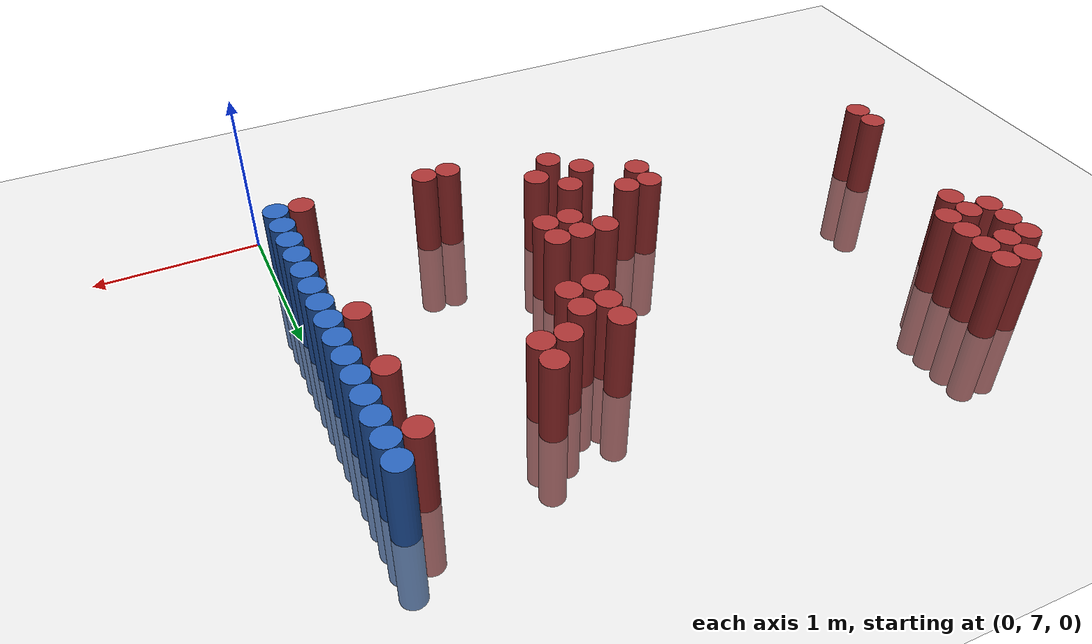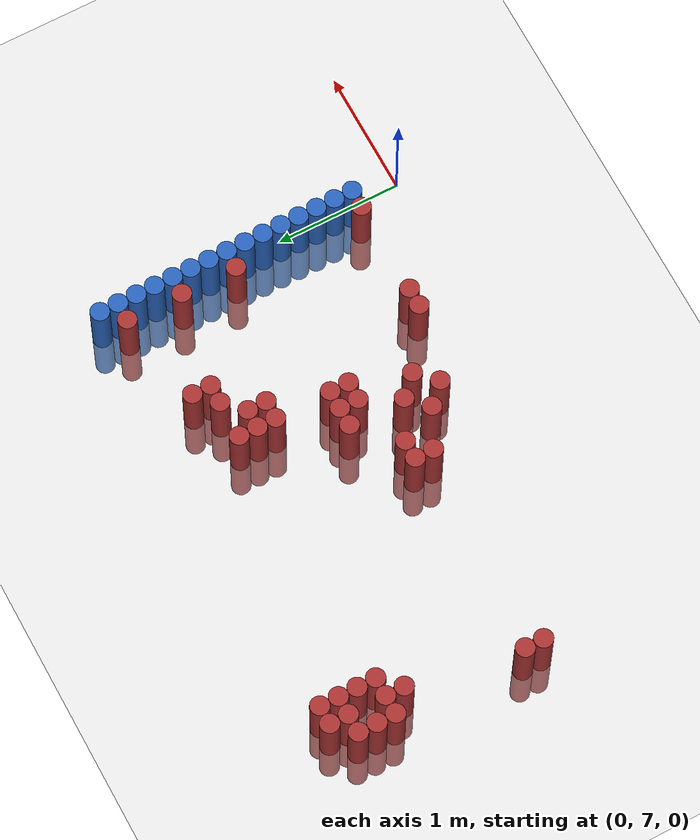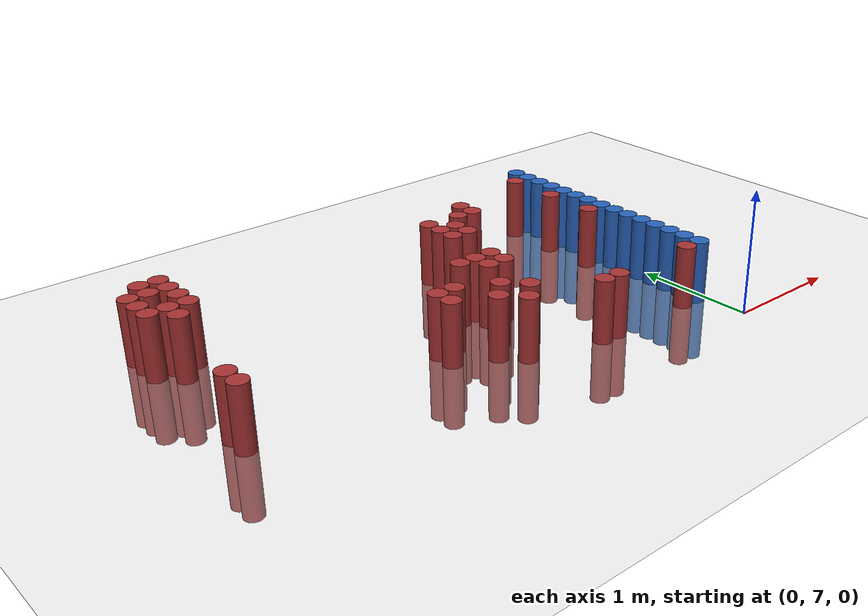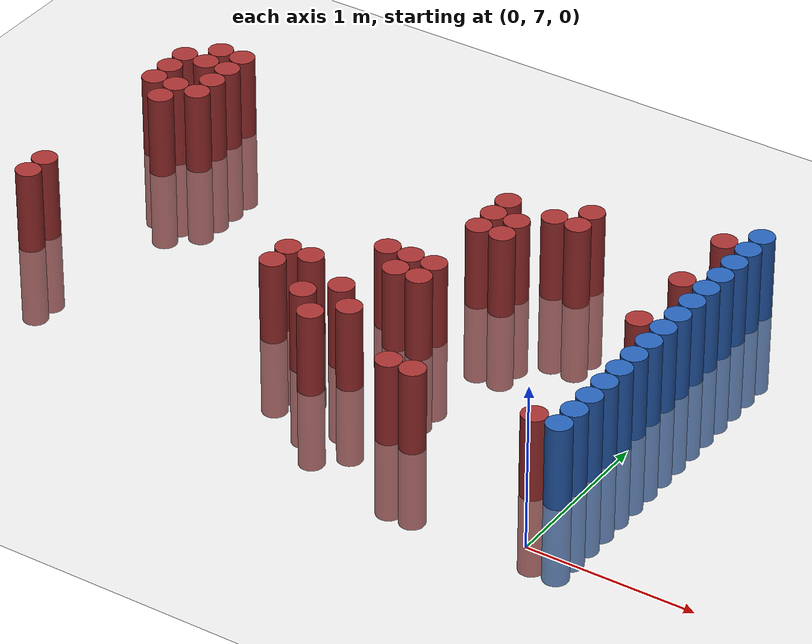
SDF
<sdf version="1.6">
 <world name="default">
  <model name="ground_plane">
   <static>1</static>
   <link name="link">
    <collision name="collision">
     <geometry><plane><normal>0 0 1</normal><size>100 100</size></plane></geometry>
     <surface><friction><ode><mu>100</mu><mu2>50</mu2></ode></friction></surface>
    </collision>
    <visual name="visual">
     <cast_shadows>0</cast_shadows>
     <geometry><plane><normal>0 0 1</normal><size>100 100</size></plane></geometry>
     <material>
      <script><uri>file://media/materials/scripts/gazebo.material</uri><name>Gazebo/Grey</name></script>
     </material>
    </visual>
   </link>
  </model>
  <model name="unit_cylinder_157">
   <static>1</static>
   <pose>-3.825000 7.875000 0.000000 0.000000 0.000000 0.000000</pose>
   <link name="link">
    <inertial>
     <mass>1</mass>
     <inertia><ixx>0.145833</ixx><ixy>0</ixy><ixz>0</ixz><iyy>0.145833</iyy><iyz>0</iyz><izz>0.125</izz></inertia>
    </inertial>
    <collision name="collision">
     <geometry><cylinder><radius>0.075000</radius><length>1</length></cylinder></geometry>
    </collision>
    <visual name="visual">
     <geometry><cylinder><radius>0.075000</radius><length>1</length></cylinder></geometry>
     <material>
      <ambient>0.648000 0.192000 0.192000 1</ambient>
      <diffuse>0.648000 0.192000 0.192000 1</diffuse>
     </material>
     <material>
      <script><name>Gazebo/Grey</name><uri>file://media/materials/scripts/gazebo.material</uri></script>
     </material>
    </visual>
   </link>
  </model>
  <model name="unit_cylinder_158">
   <static>1</static>
   <pose>-3.825000 8.025000 0.000000 0.000000 0.000000 0.000000</pose>
   <link name="link">
    <inertial>
     <mass>1</mass>
     <inertia><ixx>0.145833</ixx><ixy>0</ixy><ixz>0</ixz><iyy>0.145833</iyy><iyz>0</iyz><izz>0.125</izz></inertia>
    </inertial>
    <collision name="collision">
     <geometry><cylinder><radius>0.075000</radius><length>1</length></cylinder></geometry>
    </collision>
    <visual name="visual">
     <geometry><cylinder><radius>0.075000</radius><length>1</length></cylinder></geometry>
     <material>
      <ambient>0.648000 0.192000 0.192000 1</ambient>
      <diffuse>0.648000 0.192000 0.192000 1</diffuse>
     </material>
     <material>
      <script><name>Gazebo/Grey</name><uri>file://media/materials/scripts/gazebo.material</uri></script>
     </material>
    </visual>
   </link>
  </model>
  <model name="unit_cylinder_159">
   <static>1</static>
   <pose>-3.825000 9.075000 0.000000 0.000000 0.000000 0.000000</pose>
   <link name="link">
    <inertial>
     <mass>1</mass>
     <inertia><ixx>0.145833</ixx><ixy>0</ixy><ixz>0</ixz><iyy>0.145833</iyy><iyz>0</iyz><izz>0.125</izz></inertia>
    </inertial>
    <collision name="collision">
     <geometry><cylinder><radius>0.075000</radius><length>1</length></cylinder></geometry>
    </collision>
    <visual name="visual">
     <geometry><cylinder><radius>0.075000</radius><length>1</length></cylinder></geometry>
     <material>
      <ambient>0.648000 0.192000 0.192000 1</ambient>
      <diffuse>0.648000 0.192000 0.192000 1</diffuse>
     </material>
     <material>
      <script><name>Gazebo/Grey</name><uri>file://media/materials/scripts/gazebo.material</uri></script>
     </material>
    </visual>
   </link>
  </model>
  <model name="unit_cylinder_160">
   <static>1</static>
   <pose>-3.825000 9.225000 0.000000 0.000000 0.000000 0.000000</pose>
   <link name="link">
    <inertial>
     <mass>1</mass>
     <inertia><ixx>0.145833</ixx><ixy>0</ixy><ixz>0</ixz><iyy>0.145833</iyy><iyz>0</iyz><izz>0.125</izz></inertia>
    </inertial>
    <collision name="collision">
     <geometry><cylinder><radius>0.075000</radius><length>1</length></cylinder></geometry>
    </collision>
    <visual name="visual">
     <geometry><cylinder><radius>0.075000</radius><length>1</length></cylinder></geometry>
     <material>
      <ambient>0.648000 0.192000 0.192000 1</ambient>
      <diffuse>0.648000 0.192000 0.192000 1</diffuse>
     </material>
     <material>
      <script><name>Gazebo/Grey</name><uri>file://media/materials/scripts/gazebo.material</uri></script>
     </material>
    </visual>
   </link>
  </model>
  <model name="unit_cylinder_161">
   <static>1</static>
   <pose>-3.825000 9.375000 0.000000 0.000000 0.000000 0.000000</pose>
   <link name="link">
    <inertial>
     <mass>1</mass>
     <inertia><ixx>0.145833</ixx><ixy>0</ixy><ixz>0</ixz><iyy>0.145833</iyy><iyz>0</iyz><izz>0.125</izz></inertia>
    </inertial>
    <collision name="collision">
     <geometry><cylinder><radius>0.075000</radius><length>1</length></cylinder></geometry>
    </collision>
    <visual name="visual">
     <geometry><cylinder><radius>0.075000</radius><length>1</length></cylinder></geometry>
     <material>
      <ambient>0.648000 0.192000 0.192000 1</ambient>
      <diffuse>0.648000 0.192000 0.192000 1</diffuse>
     </material>
     <material>
      <script><name>Gazebo/Grey</name><uri>file://media/materials/scripts/gazebo.material</uri></script>
     </material>
    </visual>
   </link>
  </model>
  <model name="unit_cylinder_165">
   <static>1</static>
   <pose>-3.675000 8.925000 0.000000 0.000000 0.000000 0.000000</pose>
   <link name="link">
    <inertial>
     <mass>1</mass>
     <inertia><ixx>0.145833</ixx><ixy>0</ixy><ixz>0</ixz><iyy>0.145833</iyy><iyz>0</iyz><izz>0.125</izz></inertia>
    </inertial>
    <collision name="collision">
     <geometry><cylinder><radius>0.075000</radius><length>1</length></cylinder></geometry>
    </collision>
    <visual name="visual">
     <geometry><cylinder><radius>0.075000</radius><length>1</length></cylinder></geometry>
     <material>
      <ambient>0.648000 0.192000 0.192000 1</ambient>
      <diffuse>0.648000 0.192000 0.192000 1</diffuse>
     </material>
     <material>
      <script><name>Gazebo/Grey</name><uri>file://media/materials/scripts/gazebo.material</uri></script>
     </material>
    </visual>
   </link>
  </model>
  <model name="unit_cylinder_166">
   <static>1</static>
   <pose>-3.675000 9.075000 0.000000 0.000000 0.000000 0.000000</pose>
   <link name="link">
    <inertial>
     <mass>1</mass>
     <inertia><ixx>0.145833</ixx><ixy>0</ixy><ixz>0</ixz><iyy>0.145833</iyy><iyz>0</iyz><izz>0.125</izz></inertia>
    </inertial>
    <collision name="collision">
     <geometry><cylinder><radius>0.075000</radius><length>1</length></cylinder></geometry>
    </collision>
    <visual name="visual">
     <geometry><cylinder><radius>0.075000</radius><length>1</length></cylinder></geometry>
     <material>
      <ambient>0.648000 0.192000 0.192000 1</ambient>
      <diffuse>0.648000 0.192000 0.192000 1</diffuse>
     </material>
     <material>
      <script><name>Gazebo/Grey</name><uri>file://media/materials/scripts/gazebo.material</uri></script>
     </material>
    </visual>
   </link>
  </model>
  <model name="unit_cylinder_167">
   <static>1</static>
   <pose>-3.675000 9.375000 0.000000 0.000000 0.000000 0.000000</pose>
   <link name="link">
    <inertial>
     <mass>1</mass>
     <inertia><ixx>0.145833</ixx><ixy>0</ixy><ixz>0</ixz><iyy>0.145833</iyy><iyz>0</iyz><izz>0.125</izz></inertia>
    </inertial>
    <collision name="collision">
     <geometry><cylinder><radius>0.075000</radius><length>1</length></cylinder></geometry>
    </collision>
    <visual name="visual">
     <geometry><cylinder><radius>0.075000</radius><length>1</length></cylinder></geometry>
     <material>
      <ambient>0.648000 0.192000 0.192000 1</ambient>
      <diffuse>0.648000 0.192000 0.192000 1</diffuse>
     </material>
     <material>
      <script><name>Gazebo/Grey</name><uri>file://media/materials/scripts/gazebo.material</uri></script>
     </material>
    </visual>
   </link>
  </model>
  <model name="unit_cylinder_168">
   <static>1</static>
   <pose>-3.675000 9.525000 0.000000 0.000000 0.000000 0.000000</pose>
   <link name="link">
    <inertial>
     <mass>1</mass>
     <inertia><ixx>0.145833</ixx><ixy>0</ixy><ixz>0</ixz><iyy>0.145833</iyy><iyz>0</iyz><izz>0.125</izz></inertia>
    </inertial>
    <collision name="collision">
     <geometry><cylinder><radius>0.075000</radius><length>1</length></cylinder></geometry>
    </collision>
    <visual name="visual">
     <geometry><cylinder><radius>0.075000</radius><length>1</length></cylinder></geometry>
     <material>
      <ambient>0.648000 0.192000 0.192000 1</ambient>
      <diffuse>0.648000 0.192000 0.192000 1</diffuse>
     </material>
     <material>
      <script><name>Gazebo/Grey</name><uri>file://media/materials/scripts/gazebo.material</uri></script>
     </material>
    </visual>
   </link>
  </model>
  <model name="unit_cylinder_172">
   <static>1</static>
   <pose>-3.525000 9.075000 0.000000 0.000000 0.000000 0.000000</pose>
   <link name="link">
    <inertial>
     <mass>1</mass>
     <inertia><ixx>0.145833</ixx><ixy>0</ixy><ixz>0</ixz><iyy>0.145833</iyy><iyz>0</iyz><izz>0.125</izz></inertia>
    </inertial>
    <collision name="collision">
     <geometry><cylinder><radius>0.075000</radius><length>1</length></cylinder></geometry>
    </collision>
    <visual name="visual">
     <geometry><cylinder><radius>0.075000</radius><length>1</length></cylinder></geometry>
     <material>
      <ambient>0.648000 0.192000 0.192000 1</ambient>
      <diffuse>0.648000 0.192000 0.192000 1</diffuse>
     </material>
     <material>
      <script><name>Gazebo/Grey</name><uri>file://media/materials/scripts/gazebo.material</uri></script>
     </material>
    </visual>
   </link>
  </model>
  <model name="unit_cylinder_173">
   <static>1</static>
   <pose>-3.525000 9.225000 0.000000 0.000000 0.000000 0.000000</pose>
   <link name="link">
    <inertial>
     <mass>1</mass>
     <inertia><ixx>0.145833</ixx><ixy>0</ixy><ixz>0</ixz><iyy>0.145833</iyy><iyz>0</iyz><izz>0.125</izz></inertia>
    </inertial>
    <collision name="collision">
     <geometry><cylinder><radius>0.075000</radius><length>1</length></cylinder></geometry>
    </collision>
    <visual name="visual">
     <geometry><cylinder><radius>0.075000</radius><length>1</length></cylinder></geometry>
     <material>
      <ambient>0.648000 0.192000 0.192000 1</ambient>
      <diffuse>0.648000 0.192000 0.192000 1</diffuse>
     </material>
     <material>
      <script><name>Gazebo/Grey</name><uri>file://media/materials/scripts/gazebo.material</uri></script>
     </material>
    </visual>
   </link>
  </model>
  <model name="unit_cylinder_174">
   <static>1</static>
   <pose>-3.525000 9.375000 0.000000 0.000000 0.000000 0.000000</pose>
   <link name="link">
    <inertial>
     <mass>1</mass>
     <inertia><ixx>0.145833</ixx><ixy>0</ixy><ixz>0</ixz><iyy>0.145833</iyy><iyz>0</iyz><izz>0.125</izz></inertia>
    </inertial>
    <collision name="collision">
     <geometry><cylinder><radius>0.075000</radius><length>1</length></cylinder></geometry>
    </collision>
    <visual name="visual">
     <geometry><cylinder><radius>0.075000</radius><length>1</length></cylinder></geometry>
     <material>
      <ambient>0.648000 0.192000 0.192000 1</ambient>
      <diffuse>0.648000 0.192000 0.192000 1</diffuse>
     </material>
     <material>
      <script><name>Gazebo/Grey</name><uri>file://media/materials/scripts/gazebo.material</uri></script>
     </material>
    </visual>
   </link>
  </model>
  <model name="unit_cylinder_175">
   <static>1</static>
   <pose>-3.525000 9.525000 0.000000 0.000000 0.000000 0.000000</pose>
   <link name="link">
    <inertial>
     <mass>1</mass>
     <inertia><ixx>0.145833</ixx><ixy>0</ixy><ixz>0</ixz><iyy>0.145833</iyy><iyz>0</iyz><izz>0.125</izz></inertia>
    </inertial>
    <collision name="collision">
     <geometry><cylinder><radius>0.075000</radius><length>1</length></cylinder></geometry>
    </collision>
    <visual name="visual">
     <geometry><cylinder><radius>0.075000</radius><length>1</length></cylinder></geometry>
     <material>
      <ambient>0.648000 0.192000 0.192000 1</ambient>
      <diffuse>0.648000 0.192000 0.192000 1</diffuse>
     </material>
     <material>
      <script><name>Gazebo/Grey</name><uri>file://media/materials/scripts/gazebo.material</uri></script>
     </material>
    </visual>
   </link>
  </model>
  <model name="unit_cylinder_185">
   <static>1</static>
   <pose>-2.175000 7.875000 0.000000 0.000000 0.000000 0.000000</pose>
   <link name="link">
    <inertial>
     <mass>1</mass>
     <inertia><ixx>0.145833</ixx><ixy>0</ixy><ixz>0</ixz><iyy>0.145833</iyy><iyz>0</iyz><izz>0.125</izz></inertia>
    </inertial>
    <collision name="collision">
     <geometry><cylinder><radius>0.075000</radius><length>1</length></cylinder></geometry>
    </collision>
    <visual name="visual">
     <geometry><cylinder><radius>0.075000</radius><length>1</length></cylinder></geometry>
     <material>
      <ambient>0.648000 0.192000 0.192000 1</ambient>
      <diffuse>0.648000 0.192000 0.192000 1</diffuse>
     </material>
     <material>
      <script><name>Gazebo/Grey</name><uri>file://media/materials/scripts/gazebo.material</uri></script>
     </material>
    </visual>
   </link>
  </model>
  <model name="unit_cylinder_186">
   <static>1</static>
   <pose>-2.175000 8.025000 0.000000 0.000000 0.000000 0.000000</pose>
   <link name="link">
    <inertial>
     <mass>1</mass>
     <inertia><ixx>0.145833</ixx><ixy>0</ixy><ixz>0</ixz><iyy>0.145833</iyy><iyz>0</iyz><izz>0.125</izz></inertia>
    </inertial>
    <collision name="collision">
     <geometry><cylinder><radius>0.075000</radius><length>1</length></cylinder></geometry>
    </collision>
    <visual name="visual">
     <geometry><cylinder><radius>0.075000</radius><length>1</length></cylinder></geometry>
     <material>
      <ambient>0.648000 0.192000 0.192000 1</ambient>
      <diffuse>0.648000 0.192000 0.192000 1</diffuse>
     </material>
     <material>
      <script><name>Gazebo/Grey</name><uri>file://media/materials/scripts/gazebo.material</uri></script>
     </material>
    </visual>
   </link>
  </model>
  <model name="unit_cylinder_188">
   <static>1</static>
   <pose>-2.025000 8.025000 0.000000 0.000000 0.000000 0.000000</pose>
   <link name="link">
    <inertial>
     <mass>1</mass>
     <inertia><ixx>0.145833</ixx><ixy>0</ixy><ixz>0</ixz><iyy>0.145833</iyy><iyz>0</iyz><izz>0.125</izz></inertia>
    </inertial>
    <collision name="collision">
     <geometry><cylinder><radius>0.075000</radius><length>1</length></cylinder></geometry>
    </collision>
    <visual name="visual">
     <geometry><cylinder><radius>0.075000</radius><length>1</length></cylinder></geometry>
     <material>
      <ambient>0.648000 0.192000 0.192000 1</ambient>
      <diffuse>0.648000 0.192000 0.192000 1</diffuse>
     </material>
     <material>
      <script><name>Gazebo/Grey</name><uri>file://media/materials/scripts/gazebo.material</uri></script>
     </material>
    </visual>
   </link>
  </model>
  <model name="unit_cylinder_192">
   <static>1</static>
   <pose>-1.875000 7.725000 0.000000 0.000000 0.000000 0.000000</pose>
   <link name="link">
    <inertial>
     <mass>1</mass>
     <inertia><ixx>0.145833</ixx><ixy>0</ixy><ixz>0</ixz><iyy>0.145833</iyy><iyz>0</iyz><izz>0.125</izz></inertia>
    </inertial>
    <collision name="collision">
     <geometry><cylinder><radius>0.075000</radius><length>1</length></cylinder></geometry>
    </collision>
    <visual name="visual">
     <geometry><cylinder><radius>0.075000</radius><length>1</length></cylinder></geometry>
     <material>
      <ambient>0.648000 0.192000 0.192000 1</ambient>
      <diffuse>0.648000 0.192000 0.192000 1</diffuse>
     </material>
     <material>
      <script><name>Gazebo/Grey</name><uri>file://media/materials/scripts/gazebo.material</uri></script>
     </material>
    </visual>
   </link>
  </model>
  <model name="unit_cylinder_193">
   <static>1</static>
   <pose>-1.725000 7.575000 0.000000 0.000000 0.000000 0.000000</pose>
   <link name="link">
    <inertial>
     <mass>1</mass>
     <inertia><ixx>0.145833</ixx><ixy>0</ixy><ixz>0</ixz><iyy>0.145833</iyy><iyz>0</iyz><izz>0.125</izz></inertia>
    </inertial>
    <collision name="collision">
     <geometry><cylinder><radius>0.075000</radius><length>1</length></cylinder></geometry>
    </collision>
    <visual name="visual">
     <geometry><cylinder><radius>0.075000</radius><length>1</length></cylinder></geometry>
     <material>
      <ambient>0.648000 0.192000 0.192000 1</ambient>
      <diffuse>0.648000 0.192000 0.192000 1</diffuse>
     </material>
     <material>
      <script><name>Gazebo/Grey</name><uri>file://media/materials/scripts/gazebo.material</uri></script>
     </material>
    </visual>
   </link>
  </model>
  <model name="unit_cylinder_194">
   <static>1</static>
   <pose>-1.725000 7.875000 0.000000 0.000000 0.000000 0.000000</pose>
   <link name="link">
    <inertial>
     <mass>1</mass>
     <inertia><ixx>0.145833</ixx><ixy>0</ixy><ixz>0</ixz><iyy>0.145833</iyy><iyz>0</iyz><izz>0.125</izz></inertia>
    </inertial>
    <collision name="collision">
     <geometry><cylinder><radius>0.075000</radius><length>1</length></cylinder></geometry>
    </collision>
    <visual name="visual">
     <geometry><cylinder><radius>0.075000</radius><length>1</length></cylinder></geometry>
     <material>
      <ambient>0.648000 0.192000 0.192000 1</ambient>
      <diffuse>0.648000 0.192000 0.192000 1</diffuse>
     </material>
     <material>
      <script><name>Gazebo/Grey</name><uri>file://media/materials/scripts/gazebo.material</uri></script>
     </material>
    </visual>
   </link>
  </model>
  <model name="unit_cylinder_195">
   <static>1</static>
   <pose>-1.725000 8.325000 0.000000 0.000000 0.000000 0.000000</pose>
   <link name="link">
    <inertial>
     <mass>1</mass>
     <inertia><ixx>0.145833</ixx><ixy>0</ixy><ixz>0</ixz><iyy>0.145833</iyy><iyz>0</iyz><izz>0.125</izz></inertia>
    </inertial>
    <collision name="collision">
     <geometry><cylinder><radius>0.075000</radius><length>1</length></cylinder></geometry>
    </collision>
    <visual name="visual">
     <geometry><cylinder><radius>0.075000</radius><length>1</length></cylinder></geometry>
     <material>
      <ambient>0.648000 0.192000 0.192000 1</ambient>
      <diffuse>0.648000 0.192000 0.192000 1</diffuse>
     </material>
     <material>
      <script><name>Gazebo/Grey</name><uri>file://media/materials/scripts/gazebo.material</uri></script>
     </material>
    </visual>
   </link>
  </model>
  <model name="unit_cylinder_196">
   <static>1</static>
   <pose>-1.575000 7.725000 0.000000 0.000000 0.000000 0.000000</pose>
   <link name="link">
    <inertial>
     <mass>1</mass>
     <inertia><ixx>0.145833</ixx><ixy>0</ixy><ixz>0</ixz><iyy>0.145833</iyy><iyz>0</iyz><izz>0.125</izz></inertia>
    </inertial>
    <collision name="collision">
     <geometry><cylinder><radius>0.075000</radius><length>1</length></cylinder></geometry>
    </collision>
    <visual name="visual">
     <geometry><cylinder><radius>0.075000</radius><length>1</length></cylinder></geometry>
     <material>
      <ambient>0.648000 0.192000 0.192000 1</ambient>
      <diffuse>0.648000 0.192000 0.192000 1</diffuse>
     </material>
     <material>
      <script><name>Gazebo/Grey</name><uri>file://media/materials/scripts/gazebo.material</uri></script>
     </material>
    </visual>
   </link>
  </model>
  <model name="unit_cylinder_197">
   <static>1</static>
   <pose>-1.575000 8.175000 0.000000 0.000000 0.000000 0.000000</pose>
   <link name="link">
    <inertial>
     <mass>1</mass>
     <inertia><ixx>0.145833</ixx><ixy>0</ixy><ixz>0</ixz><iyy>0.145833</iyy><iyz>0</iyz><izz>0.125</izz></inertia>
    </inertial>
    <collision name="collision">
     <geometry><cylinder><radius>0.075000</radius><length>1</length></cylinder></geometry>
    </collision>
    <visual name="visual">
     <geometry><cylinder><radius>0.075000</radius><length>1</length></cylinder></geometry>
     <material>
      <ambient>0.648000 0.192000 0.192000 1</ambient>
      <diffuse>0.648000 0.192000 0.192000 1</diffuse>
     </material>
     <material>
      <script><name>Gazebo/Grey</name><uri>file://media/materials/scripts/gazebo.material</uri></script>
     </material>
    </visual>
   </link>
  </model>
  <model name="unit_cylinder_198">
   <static>1</static>
   <pose>-1.575000 8.325000 0.000000 0.000000 0.000000 0.000000</pose>
   <link name="link">
    <inertial>
     <mass>1</mass>
     <inertia><ixx>0.145833</ixx><ixy>0</ixy><ixz>0</ixz><iyy>0.145833</iyy><iyz>0</iyz><izz>0.125</izz></inertia>
    </inertial>
    <collision name="collision">
     <geometry><cylinder><radius>0.075000</radius><length>1</length></cylinder></geometry>
    </collision>
    <visual name="visual">
     <geometry><cylinder><radius>0.075000</radius><length>1</length></cylinder></geometry>
     <material>
      <ambient>0.648000 0.192000 0.192000 1</ambient>
      <diffuse>0.648000 0.192000 0.192000 1</diffuse>
     </material>
     <material>
      <script><name>Gazebo/Grey</name><uri>file://media/materials/scripts/gazebo.material</uri></script>
     </material>
    </visual>
   </link>
  </model>
  <model name="unit_cylinder_200">
   <static>1</static>
   <pose>-1.425000 8.175000 0.000000 0.000000 0.000000 0.000000</pose>
   <link name="link">
    <inertial>
     <mass>1</mass>
     <inertia><ixx>0.145833</ixx><ixy>0</ixy><ixz>0</ixz><iyy>0.145833</iyy><iyz>0</iyz><izz>0.125</izz></inertia>
    </inertial>
    <collision name="collision">
     <geometry><cylinder><radius>0.075000</radius><length>1</length></cylinder></geometry>
    </collision>
    <visual name="visual">
     <geometry><cylinder><radius>0.075000</radius><length>1</length></cylinder></geometry>
     <material>
      <ambient>0.648000 0.192000 0.192000 1</ambient>
      <diffuse>0.648000 0.192000 0.192000 1</diffuse>
     </material>
     <material>
      <script><name>Gazebo/Grey</name><uri>file://media/materials/scripts/gazebo.material</uri></script>
     </material>
    </visual>
   </link>
  </model>
  <model name="unit_cylinder_201">
   <static>1</static>
   <pose>-1.425000 8.325000 0.000000 0.000000 0.000000 0.000000</pose>
   <link name="link">
    <inertial>
     <mass>1</mass>
     <inertia><ixx>0.145833</ixx><ixy>0</ixy><ixz>0</ixz><iyy>0.145833</iyy><iyz>0</iyz><izz>0.125</izz></inertia>
    </inertial>
    <collision name="collision">
     <geometry><cylinder><radius>0.075000</radius><length>1</length></cylinder></geometry>
    </collision>
    <visual name="visual">
     <geometry><cylinder><radius>0.075000</radius><length>1</length></cylinder></geometry>
     <material>
      <ambient>0.648000 0.192000 0.192000 1</ambient>
      <diffuse>0.648000 0.192000 0.192000 1</diffuse>
     </material>
     <material>
      <script><name>Gazebo/Grey</name><uri>file://media/materials/scripts/gazebo.material</uri></script>
     </material>
    </visual>
   </link>
  </model>
  <model name="unit_cylinder_202">
   <static>1</static>
   <pose>-1.425000 8.775000 0.000000 0.000000 0.000000 0.000000</pose>
   <link name="link">
    <inertial>
     <mass>1</mass>
     <inertia><ixx>0.145833</ixx><ixy>0</ixy><ixz>0</ixz><iyy>0.145833</iyy><iyz>0</iyz><izz>0.125</izz></inertia>
    </inertial>
    <collision name="collision">
     <geometry><cylinder><radius>0.075000</radius><length>1</length></cylinder></geometry>
    </collision>
    <visual name="visual">
     <geometry><cylinder><radius>0.075000</radius><length>1</length></cylinder></geometry>
     <material>
      <ambient>0.648000 0.192000 0.192000 1</ambient>
      <diffuse>0.648000 0.192000 0.192000 1</diffuse>
     </material>
     <material>
      <script><name>Gazebo/Grey</name><uri>file://media/materials/scripts/gazebo.material</uri></script>
     </material>
    </visual>
   </link>
  </model>
  <model name="unit_cylinder_203">
   <static>1</static>
   <pose>-1.425000 8.925000 0.000000 0.000000 0.000000 0.000000</pose>
   <link name="link">
    <inertial>
     <mass>1</mass>
     <inertia><ixx>0.145833</ixx><ixy>0</ixy><ixz>0</ixz><iyy>0.145833</iyy><iyz>0</iyz><izz>0.125</izz></inertia>
    </inertial>
    <collision name="collision">
     <geometry><cylinder><radius>0.075000</radius><length>1</length></cylinder></geometry>
    </collision>
    <visual name="visual">
     <geometry><cylinder><radius>0.075000</radius><length>1</length></cylinder></geometry>
     <material>
      <ambient>0.648000 0.192000 0.192000 1</ambient>
      <diffuse>0.648000 0.192000 0.192000 1</diffuse>
     </material>
     <material>
      <script><name>Gazebo/Grey</name><uri>file://media/materials/scripts/gazebo.material</uri></script>
     </material>
    </visual>
   </link>
  </model>
  <model name="unit_cylinder_204">
   <static>1</static>
   <pose>-1.425000 9.075000 0.000000 0.000000 0.000000 0.000000</pose>
   <link name="link">
    <inertial>
     <mass>1</mass>
     <inertia><ixx>0.145833</ixx><ixy>0</ixy><ixz>0</ixz><iyy>0.145833</iyy><iyz>0</iyz><izz>0.125</izz></inertia>
    </inertial>
    <collision name="collision">
     <geometry><cylinder><radius>0.075000</radius><length>1</length></cylinder></geometry>
    </collision>
    <visual name="visual">
     <geometry><cylinder><radius>0.075000</radius><length>1</length></cylinder></geometry>
     <material>
      <ambient>0.648000 0.192000 0.192000 1</ambient>
      <diffuse>0.648000 0.192000 0.192000 1</diffuse>
     </material>
     <material>
      <script><name>Gazebo/Grey</name><uri>file://media/materials/scripts/gazebo.material</uri></script>
     </material>
    </visual>
   </link>
  </model>
  <model name="unit_cylinder_208">
   <static>1</static>
   <pose>-1.275000 8.775000 0.000000 0.000000 0.000000 0.000000</pose>
   <link name="link">
    <inertial>
     <mass>1</mass>
     <inertia><ixx>0.145833</ixx><ixy>0</ixy><ixz>0</ixz><iyy>0.145833</iyy><iyz>0</iyz><izz>0.125</izz></inertia>
    </inertial>
    <collision name="collision">
     <geometry><cylinder><radius>0.075000</radius><length>1</length></cylinder></geometry>
    </collision>
    <visual name="visual">
     <geometry><cylinder><radius>0.075000</radius><length>1</length></cylinder></geometry>
     <material>
      <ambient>0.648000 0.192000 0.192000 1</ambient>
      <diffuse>0.648000 0.192000 0.192000 1</diffuse>
     </material>
     <material>
      <script><name>Gazebo/Grey</name><uri>file://media/materials/scripts/gazebo.material</uri></script>
     </material>
    </visual>
   </link>
  </model>
  <model name="unit_cylinder_209">
   <static>1</static>
   <pose>-1.275000 8.925000 0.000000 0.000000 0.000000 0.000000</pose>
   <link name="link">
    <inertial>
     <mass>1</mass>
     <inertia><ixx>0.145833</ixx><ixy>0</ixy><ixz>0</ixz><iyy>0.145833</iyy><iyz>0</iyz><izz>0.125</izz></inertia>
    </inertial>
    <collision name="collision">
     <geometry><cylinder><radius>0.075000</radius><length>1</length></cylinder></geometry>
    </collision>
    <visual name="visual">
     <geometry><cylinder><radius>0.075000</radius><length>1</length></cylinder></geometry>
     <material>
      <ambient>0.648000 0.192000 0.192000 1</ambient>
      <diffuse>0.648000 0.192000 0.192000 1</diffuse>
     </material>
     <material>
      <script><name>Gazebo/Grey</name><uri>file://media/materials/scripts/gazebo.material</uri></script>
     </material>
    </visual>
   </link>
  </model>
  <model name="unit_cylinder_211">
   <static>1</static>
   <pose>-1.125000 7.425000 0.000000 0.000000 0.000000 0.000000</pose>
   <link name="link">
    <inertial>
     <mass>1</mass>
     <inertia><ixx>0.145833</ixx><ixy>0</ixy><ixz>0</ixz><iyy>0.145833</iyy><iyz>0</iyz><izz>0.125</izz></inertia>
    </inertial>
    <collision name="collision">
     <geometry><cylinder><radius>0.075000</radius><length>1</length></cylinder></geometry>
    </collision>
    <visual name="visual">
     <geometry><cylinder><radius>0.075000</radius><length>1</length></cylinder></geometry>
     <material>
      <ambient>0.648000 0.192000 0.192000 1</ambient>
      <diffuse>0.648000 0.192000 0.192000 1</diffuse>
     </material>
     <material>
      <script><name>Gazebo/Grey</name><uri>file://media/materials/scripts/gazebo.material</uri></script>
     </material>
    </visual>
   </link>
  </model>
  <model name="unit_cylinder_212">
   <static>1</static>
   <pose>-1.125000 9.075000 0.000000 0.000000 0.000000 0.000000</pose>
   <link name="link">
    <inertial>
     <mass>1</mass>
     <inertia><ixx>0.145833</ixx><ixy>0</ixy><ixz>0</ixz><iyy>0.145833</iyy><iyz>0</iyz><izz>0.125</izz></inertia>
    </inertial>
    <collision name="collision">
     <geometry><cylinder><radius>0.075000</radius><length>1</length></cylinder></geometry>
    </collision>
    <visual name="visual">
     <geometry><cylinder><radius>0.075000</radius><length>1</length></cylinder></geometry>
     <material>
      <ambient>0.648000 0.192000 0.192000 1</ambient>
      <diffuse>0.648000 0.192000 0.192000 1</diffuse>
     </material>
     <material>
      <script><name>Gazebo/Grey</name><uri>file://media/materials/scripts/gazebo.material</uri></script>
     </material>
    </visual>
   </link>
  </model>
  <model name="unit_cylinder_215">
   <static>1</static>
   <pose>-0.975000 7.425000 0.000000 0.000000 0.000000 0.000000</pose>
   <link name="link">
    <inertial>
     <mass>1</mass>
     <inertia><ixx>0.145833</ixx><ixy>0</ixy><ixz>0</ixz><iyy>0.145833</iyy><iyz>0</iyz><izz>0.125</izz></inertia>
    </inertial>
    <collision name="collision">
     <geometry><cylinder><radius>0.075000</radius><length>1</length></cylinder></geometry>
    </collision>
    <visual name="visual">
     <geometry><cylinder><radius>0.075000</radius><length>1</length></cylinder></geometry>
     <material>
      <ambient>0.648000 0.192000 0.192000 1</ambient>
      <diffuse>0.648000 0.192000 0.192000 1</diffuse>
     </material>
     <material>
      <script><name>Gazebo/Grey</name><uri>file://media/materials/scripts/gazebo.material</uri></script>
     </material>
    </visual>
   </link>
  </model>
  <model name="unit_cylinder_216">
   <static>1</static>
   <pose>-0.975000 9.075000 0.000000 0.000000 0.000000 0.000000</pose>
   <link name="link">
    <inertial>
     <mass>1</mass>
     <inertia><ixx>0.145833</ixx><ixy>0</ixy><ixz>0</ixz><iyy>0.145833</iyy><iyz>0</iyz><izz>0.125</izz></inertia>
    </inertial>
    <collision name="collision">
     <geometry><cylinder><radius>0.075000</radius><length>1</length></cylinder></geometry>
    </collision>
    <visual name="visual">
     <geometry><cylinder><radius>0.075000</radius><length>1</length></cylinder></geometry>
     <material>
      <ambient>0.648000 0.192000 0.192000 1</ambient>
      <diffuse>0.648000 0.192000 0.192000 1</diffuse>
     </material>
     <material>
      <script><name>Gazebo/Grey</name><uri>file://media/materials/scripts/gazebo.material</uri></script>
     </material>
    </visual>
   </link>
  </model>
  <model name="unit_cylinder_217">
   <static>1</static>
   <pose>-0.975000 9.225000 0.000000 0.000000 0.000000 0.000000</pose>
   <link name="link">
    <inertial>
     <mass>1</mass>
     <inertia><ixx>0.145833</ixx><ixy>0</ixy><ixz>0</ixz><iyy>0.145833</iyy><iyz>0</iyz><izz>0.125</izz></inertia>
    </inertial>
    <collision name="collision">
     <geometry><cylinder><radius>0.075000</radius><length>1</length></cylinder></geometry>
    </collision>
    <visual name="visual">
     <geometry><cylinder><radius>0.075000</radius><length>1</length></cylinder></geometry>
     <material>
      <ambient>0.648000 0.192000 0.192000 1</ambient>
      <diffuse>0.648000 0.192000 0.192000 1</diffuse>
     </material>
     <material>
      <script><name>Gazebo/Grey</name><uri>file://media/materials/scripts/gazebo.material</uri></script>
     </material>
    </visual>
   </link>
  </model>
  <model name="unit_cylinder_235">
   <static>1</static>
   <pose>-0.225000 7.425000 0.000000 0.000000 0.000000 0.000000</pose>
   <link name="link">
    <inertial>
     <mass>1</mass>
     <inertia><ixx>0.145833</ixx><ixy>0</ixy><ixz>0</ixz><iyy>0.145833</iyy><iyz>0</iyz><izz>0.125</izz></inertia>
    </inertial>
    <collision name="collision">
     <geometry><cylinder><radius>0.075000</radius><length>1</length></cylinder></geometry>
    </collision>
    <visual name="visual">
     <geometry><cylinder><radius>0.075000</radius><length>1</length></cylinder></geometry>
     <material>
      <ambient>0.648000 0.192000 0.192000 1</ambient>
      <diffuse>0.648000 0.192000 0.192000 1</diffuse>
     </material>
     <material>
      <script><name>Gazebo/Grey</name><uri>file://media/materials/scripts/gazebo.material</uri></script>
     </material>
    </visual>
   </link>
  </model>
  <model name="unit_cylinder_236">
   <static>1</static>
   <pose>-0.225000 8.475000 0.000000 0.000000 0.000000 0.000000</pose>
   <link name="link">
    <inertial>
     <mass>1</mass>
     <inertia><ixx>0.145833</ixx><ixy>0</ixy><ixz>0</ixz><iyy>0.145833</iyy><iyz>0</iyz><izz>0.125</izz></inertia>
    </inertial>
    <collision name="collision">
     <geometry><cylinder><radius>0.075000</radius><length>1</length></cylinder></geometry>
    </collision>
    <visual name="visual">
     <geometry><cylinder><radius>0.075000</radius><length>1</length></cylinder></geometry>
     <material>
      <ambient>0.648000 0.192000 0.192000 1</ambient>
      <diffuse>0.648000 0.192000 0.192000 1</diffuse>
     </material>
     <material>
      <script><name>Gazebo/Grey</name><uri>file://media/materials/scripts/gazebo.material</uri></script>
     </material>
    </visual>
   </link>
  </model>
  <model name="unit_cylinder_237">
   <static>1</static>
   <pose>-0.225000 8.925000 0.000000 0.000000 0.000000 0.000000</pose>
   <link name="link">
    <inertial>
     <mass>1</mass>
     <inertia><ixx>0.145833</ixx><ixy>0</ixy><ixz>0</ixz><iyy>0.145833</iyy><iyz>0</iyz><izz>0.125</izz></inertia>
    </inertial>
    <collision name="collision">
     <geometry><cylinder><radius>0.075000</radius><length>1</length></cylinder></geometry>
    </collision>
    <visual name="visual">
     <geometry><cylinder><radius>0.075000</radius><length>1</length></cylinder></geometry>
     <material>
      <ambient>0.648000 0.192000 0.192000 1</ambient>
      <diffuse>0.648000 0.192000 0.192000 1</diffuse>
     </material>
     <material>
      <script><name>Gazebo/Grey</name><uri>file://media/materials/scripts/gazebo.material</uri></script>
     </material>
    </visual>
   </link>
  </model>
  <model name="unit_cylinder_238">
   <static>1</static>
   <pose>-0.225000 9.375000 0.000000 0.000000 0.000000 0.000000</pose>
   <link name="link">
    <inertial>
     <mass>1</mass>
     <inertia><ixx>0.145833</ixx><ixy>0</ixy><ixz>0</ixz><iyy>0.145833</iyy><iyz>0</iyz><izz>0.125</izz></inertia>
    </inertial>
    <collision name="collision">
     <geometry><cylinder><radius>0.075000</radius><length>1</length></cylinder></geometry>
    </collision>
    <visual name="visual">
     <geometry><cylinder><radius>0.075000</radius><length>1</length></cylinder></geometry>
     <material>
      <ambient>0.648000 0.192000 0.192000 1</ambient>
      <diffuse>0.648000 0.192000 0.192000 1</diffuse>
     </material>
     <material>
      <script><name>Gazebo/Grey</name><uri>file://media/materials/scripts/gazebo.material</uri></script>
     </material>
    </visual>
   </link>
  </model>
  <model name="unit_cylinder_254">
   <static>1</static>
   <pose>-0.075000 7.425000 0.000000 0.000000 0.000000 0.000000</pose>
   <link name="link">
    <inertial>
     <mass>1</mass>
     <inertia><ixx>0.145833</ixx><ixy>0</ixy><ixz>0</ixz><iyy>0.145833</iyy><iyz>0</iyz><izz>0.125</izz></inertia>
    </inertial>
    <collision name="collision">
     <geometry><cylinder><radius>0.075000</radius><length>1</length></cylinder></geometry>
    </collision>
    <visual name="visual">
     <geometry><cylinder><radius>0.075000</radius><length>1</length></cylinder></geometry>
     <material>
      <ambient>0.152000 0.379000 0.720000 1</ambient>
      <diffuse>0.152000 0.379000 0.720000 1</diffuse>
     </material>
     <material>
      <script><name>Gazebo/Grey</name><uri>file://media/materials/scripts/gazebo.material</uri></script>
     </material>
    </visual>
   </link>
  </model>
  <model name="unit_cylinder_255">
   <static>1</static>
   <pose>-0.075000 7.575000 0.000000 0.000000 0.000000 0.000000</pose>
   <link name="link">
    <inertial>
     <mass>1</mass>
     <inertia><ixx>0.145833</ixx><ixy>0</ixy><ixz>0</ixz><iyy>0.145833</iyy><iyz>0</iyz><izz>0.125</izz></inertia>
    </inertial>
    <collision name="collision">
     <geometry><cylinder><radius>0.075000</radius><length>1</length></cylinder></geometry>
    </collision>
    <visual name="visual">
     <geometry><cylinder><radius>0.075000</radius><length>1</length></cylinder></geometry>
     <material>
      <ambient>0.152000 0.379000 0.720000 1</ambient>
      <diffuse>0.152000 0.379000 0.720000 1</diffuse>
     </material>
     <material>
      <script><name>Gazebo/Grey</name><uri>file://media/materials/scripts/gazebo.material</uri></script>
     </material>
    </visual>
   </link>
  </model>
  <model name="unit_cylinder_256">
   <static>1</static>
   <pose>-0.075000 7.725000 0.000000 0.000000 0.000000 0.000000</pose>
   <link name="link">
    <inertial>
     <mass>1</mass>
     <inertia><ixx>0.145833</ixx><ixy>0</ixy><ixz>0</ixz><iyy>0.145833</iyy><iyz>0</iyz><izz>0.125</izz></inertia>
    </inertial>
    <collision name="collision">
     <geometry><cylinder><radius>0.075000</radius><length>1</length></cylinder></geometry>
    </collision>
    <visual name="visual">
     <geometry><cylinder><radius>0.075000</radius><length>1</length></cylinder></geometry>
     <material>
      <ambient>0.152000 0.379000 0.720000 1</ambient>
      <diffuse>0.152000 0.379000 0.720000 1</diffuse>
     </material>
     <material>
      <script><name>Gazebo/Grey</name><uri>file://media/materials/scripts/gazebo.material</uri></script>
     </material>
    </visual>
   </link>
  </model>
  <model name="unit_cylinder_257">
   <static>1</static>
   <pose>-0.075000 7.875000 0.000000 0.000000 0.000000 0.000000</pose>
   <link name="link">
    <inertial>
     <mass>1</mass>
     <inertia><ixx>0.145833</ixx><ixy>0</ixy><ixz>0</ixz><iyy>0.145833</iyy><iyz>0</iyz><izz>0.125</izz></inertia>
    </inertial>
    <collision name="collision">
     <geometry><cylinder><radius>0.075000</radius><length>1</length></cylinder></geometry>
    </collision>
    <visual name="visual">
     <geometry><cylinder><radius>0.075000</radius><length>1</length></cylinder></geometry>
     <material>
      <ambient>0.152000 0.379000 0.720000 1</ambient>
      <diffuse>0.152000 0.379000 0.720000 1</diffuse>
     </material>
     <material>
      <script><name>Gazebo/Grey</name><uri>file://media/materials/scripts/gazebo.material</uri></script>
     </material>
    </visual>
   </link>
  </model>
  <model name="unit_cylinder_258">
   <static>1</static>
   <pose>-0.075000 8.025000 0.000000 0.000000 0.000000 0.000000</pose>
   <link name="link">
    <inertial>
     <mass>1</mass>
     <inertia><ixx>0.145833</ixx><ixy>0</ixy><ixz>0</ixz><iyy>0.145833</iyy><iyz>0</iyz><izz>0.125</izz></inertia>
    </inertial>
    <collision name="collision">
     <geometry><cylinder><radius>0.075000</radius><length>1</length></cylinder></geometry>
    </collision>
    <visual name="visual">
     <geometry><cylinder><radius>0.075000</radius><length>1</length></cylinder></geometry>
     <material>
      <ambient>0.152000 0.379000 0.720000 1</ambient>
      <diffuse>0.152000 0.379000 0.720000 1</diffuse>
     </material>
     <material>
      <script><name>Gazebo/Grey</name><uri>file://media/materials/scripts/gazebo.material</uri></script>
     </material>
    </visual>
   </link>
  </model>
  <model name="unit_cylinder_259">
   <static>1</static>
   <pose>-0.075000 8.175000 0.000000 0.000000 0.000000 0.000000</pose>
   <link name="link">
    <inertial>
     <mass>1</mass>
     <inertia><ixx>0.145833</ixx><ixy>0</ixy><ixz>0</ixz><iyy>0.145833</iyy><iyz>0</iyz><izz>0.125</izz></inertia>
    </inertial>
    <collision name="collision">
     <geometry><cylinder><radius>0.075000</radius><length>1</length></cylinder></geometry>
    </collision>
    <visual name="visual">
     <geometry><cylinder><radius>0.075000</radius><length>1</length></cylinder></geometry>
     <material>
      <ambient>0.152000 0.379000 0.720000 1</ambient>
      <diffuse>0.152000 0.379000 0.720000 1</diffuse>
     </material>
     <material>
      <script><name>Gazebo/Grey</name><uri>file://media/materials/scripts/gazebo.material</uri></script>
     </material>
    </visual>
   </link>
  </model>
  <model name="unit_cylinder_260">
   <static>1</static>
   <pose>-0.075000 8.325000 0.000000 0.000000 0.000000 0.000000</pose>
   <link name="link">
    <inertial>
     <mass>1</mass>
     <inertia><ixx>0.145833</ixx><ixy>0</ixy><ixz>0</ixz><iyy>0.145833</iyy><iyz>0</iyz><izz>0.125</izz></inertia>
    </inertial>
    <collision name="collision">
     <geometry><cylinder><radius>0.075000</radius><length>1</length></cylinder></geometry>
    </collision>
    <visual name="visual">
     <geometry><cylinder><radius>0.075000</radius><length>1</length></cylinder></geometry>
     <material>
      <ambient>0.152000 0.379000 0.720000 1</ambient>
      <diffuse>0.152000 0.379000 0.720000 1</diffuse>
     </material>
     <material>
      <script><name>Gazebo/Grey</name><uri>file://media/materials/scripts/gazebo.material</uri></script>
     </material>
    </visual>
   </link>
  </model>
  <model name="unit_cylinder_261">
   <static>1</static>
   <pose>-0.075000 8.475000 0.000000 0.000000 0.000000 0.000000</pose>
   <link name="link">
    <inertial>
     <mass>1</mass>
     <inertia><ixx>0.145833</ixx><ixy>0</ixy><ixz>0</ixz><iyy>0.145833</iyy><iyz>0</iyz><izz>0.125</izz></inertia>
    </inertial>
    <collision name="collision">
     <geometry><cylinder><radius>0.075000</radius><length>1</length></cylinder></geometry>
    </collision>
    <visual name="visual">
     <geometry><cylinder><radius>0.075000</radius><length>1</length></cylinder></geometry>
     <material>
      <ambient>0.152000 0.379000 0.720000 1</ambient>
      <diffuse>0.152000 0.379000 0.720000 1</diffuse>
     </material>
     <material>
      <script><name>Gazebo/Grey</name><uri>file://media/materials/scripts/gazebo.material</uri></script>
     </material>
    </visual>
   </link>
  </model>
  <model name="unit_cylinder_262">
   <static>1</static>
   <pose>-0.075000 8.625000 0.000000 0.000000 0.000000 0.000000</pose>
   <link name="link">
    <inertial>
     <mass>1</mass>
     <inertia><ixx>0.145833</ixx><ixy>0</ixy><ixz>0</ixz><iyy>0.145833</iyy><iyz>0</iyz><izz>0.125</izz></inertia>
    </inertial>
    <collision name="collision">
     <geometry><cylinder><radius>0.075000</radius><length>1</length></cylinder></geometry>
    </collision>
    <visual name="visual">
     <geometry><cylinder><radius>0.075000</radius><length>1</length></cylinder></geometry>
     <material>
      <ambient>0.152000 0.379000 0.720000 1</ambient>
      <diffuse>0.152000 0.379000 0.720000 1</diffuse>
     </material>
     <material>
      <script><name>Gazebo/Grey</name><uri>file://media/materials/scripts/gazebo.material</uri></script>
     </material>
    </visual>
   </link>
  </model>
  <model name="unit_cylinder_263">
   <static>1</static>
   <pose>-0.075000 8.775000 0.000000 0.000000 0.000000 0.000000</pose>
   <link name="link">
    <inertial>
     <mass>1</mass>
     <inertia><ixx>0.145833</ixx><ixy>0</ixy><ixz>0</ixz><iyy>0.145833</iyy><iyz>0</iyz><izz>0.125</izz></inertia>
    </inertial>
    <collision name="collision">
     <geometry><cylinder><radius>0.075000</radius><length>1</length></cylinder></geometry>
    </collision>
    <visual name="visual">
     <geometry><cylinder><radius>0.075000</radius><length>1</length></cylinder></geometry>
     <material>
      <ambient>0.152000 0.379000 0.720000 1</ambient>
      <diffuse>0.152000 0.379000 0.720000 1</diffuse>
     </material>
     <material>
      <script><name>Gazebo/Grey</name><uri>file://media/materials/scripts/gazebo.material</uri></script>
     </material>
    </visual>
   </link>
  </model>
  <model name="unit_cylinder_264">
   <static>1</static>
   <pose>-0.075000 8.925000 0.000000 0.000000 0.000000 0.000000</pose>
   <link name="link">
    <inertial>
     <mass>1</mass>
     <inertia><ixx>0.145833</ixx><ixy>0</ixy><ixz>0</ixz><iyy>0.145833</iyy><iyz>0</iyz><izz>0.125</izz></inertia>
    </inertial>
    <collision name="collision">
     <geometry><cylinder><radius>0.075000</radius><length>1</length></cylinder></geometry>
    </collision>
    <visual name="visual">
     <geometry><cylinder><radius>0.075000</radius><length>1</length></cylinder></geometry>
     <material>
      <ambient>0.152000 0.379000 0.720000 1</ambient>
      <diffuse>0.152000 0.379000 0.720000 1</diffuse>
     </material>
     <material>
      <script><name>Gazebo/Grey</name><uri>file://media/materials/scripts/gazebo.material</uri></script>
     </material>
    </visual>
   </link>
  </model>
  <model name="unit_cylinder_265">
   <static>1</static>
   <pose>-0.075000 9.075000 0.000000 0.000000 0.000000 0.000000</pose>
   <link name="link">
    <inertial>
     <mass>1</mass>
     <inertia><ixx>0.145833</ixx><ixy>0</ixy><ixz>0</ixz><iyy>0.145833</iyy><iyz>0</iyz><izz>0.125</izz></inertia>
    </inertial>
    <collision name="collision">
     <geometry><cylinder><radius>0.075000</radius><length>1</length></cylinder></geometry>
    </collision>
    <visual name="visual">
     <geometry><cylinder><radius>0.075000</radius><length>1</length></cylinder></geometry>
     <material>
      <ambient>0.152000 0.379000 0.720000 1</ambient>
      <diffuse>0.152000 0.379000 0.720000 1</diffuse>
     </material>
     <material>
      <script><name>Gazebo/Grey</name><uri>file://media/materials/scripts/gazebo.material</uri></script>
     </material>
    </visual>
   </link>
  </model>
  <model name="unit_cylinder_266">
   <static>1</static>
   <pose>-0.075000 9.225000 0.000000 0.000000 0.000000 0.000000</pose>
   <link name="link">
    <inertial>
     <mass>1</mass>
     <inertia><ixx>0.145833</ixx><ixy>0</ixy><ixz>0</ixz><iyy>0.145833</iyy><iyz>0</iyz><izz>0.125</izz></inertia>
    </inertial>
    <collision name="collision">
     <geometry><cylinder><radius>0.075000</radius><length>1</length></cylinder></geometry>
    </collision>
    <visual name="visual">
     <geometry><cylinder><radius>0.075000</radius><length>1</length></cylinder></geometry>
     <material>
      <ambient>0.152000 0.379000 0.720000 1</ambient>
      <diffuse>0.152000 0.379000 0.720000 1</diffuse>
     </material>
     <material>
      <script><name>Gazebo/Grey</name><uri>file://media/materials/scripts/gazebo.material</uri></script>
     </material>
    </visual>
   </link>
  </model>
  <model name="unit_cylinder_267">
   <static>1</static>
   <pose>-0.075000 9.375000 0.000000 0.000000 0.000000 0.000000</pose>
   <link name="link">
    <inertial>
     <mass>1</mass>
     <inertia><ixx>0.145833</ixx><ixy>0</ixy><ixz>0</ixz><iyy>0.145833</iyy><iyz>0</iyz><izz>0.125</izz></inertia>
    </inertial>
    <collision name="collision">
     <geometry><cylinder><radius>0.075000</radius><length>1</length></cylinder></geometry>
    </collision>
    <visual name="visual">
     <geometry><cylinder><radius>0.075000</radius><length>1</length></cylinder></geometry>
     <material>
      <ambient>0.152000 0.379000 0.720000 1</ambient>
      <diffuse>0.152000 0.379000 0.720000 1</diffuse>
     </material>
     <material>
      <script><name>Gazebo/Grey</name><uri>file://media/materials/scripts/gazebo.material</uri></script>
     </material>
    </visual>
   </link>
  </model>
  <model name="unit_cylinder_268">
   <static>1</static>
   <pose>-0.075000 9.525000 0.000000 0.000000 0.000000 0.000000</pose>
   <link name="link">
    <inertial>
     <mass>1</mass>
     <inertia><ixx>0.145833</ixx><ixy>0</ixy><ixz>0</ixz><iyy>0.145833</iyy><iyz>0</iyz><izz>0.125</izz></inertia>
    </inertial>
    <collision name="collision">
     <geometry><cylinder><radius>0.075000</radius><length>1</length></cylinder></geometry>
    </collision>
    <visual name="visual">
     <geometry><cylinder><radius>0.075000</radius><length>1</length></cylinder></geometry>
     <material>
      <ambient>0.152000 0.379000 0.720000 1</ambient>
      <diffuse>0.152000 0.379000 0.720000 1</diffuse>
     </material>
     <material>
      <script><name>Gazebo/Grey</name><uri>file://media/materials/scripts/gazebo.material</uri></script>
     </material>
    </visual>
   </link>
  </model>
 </world>
</sdf>
